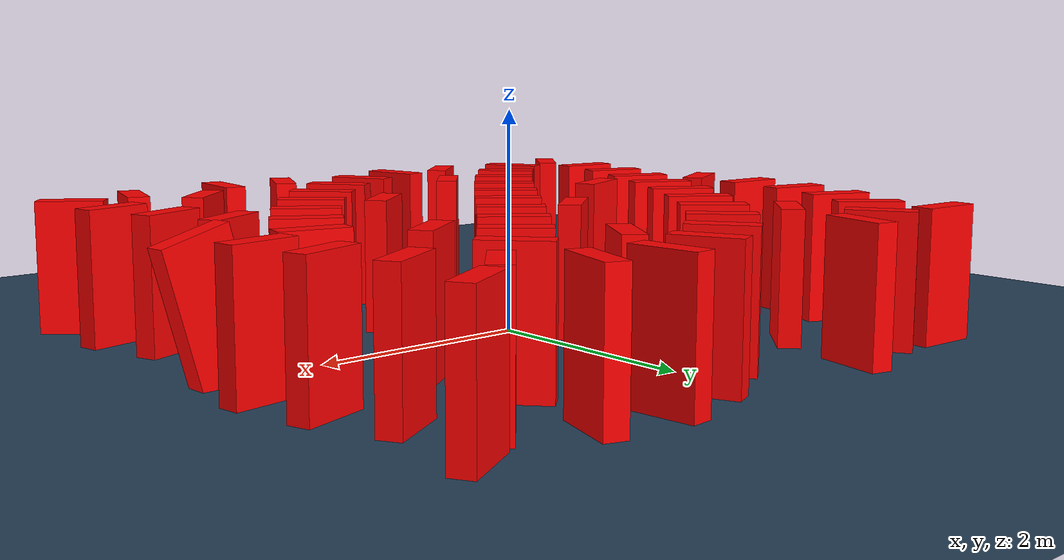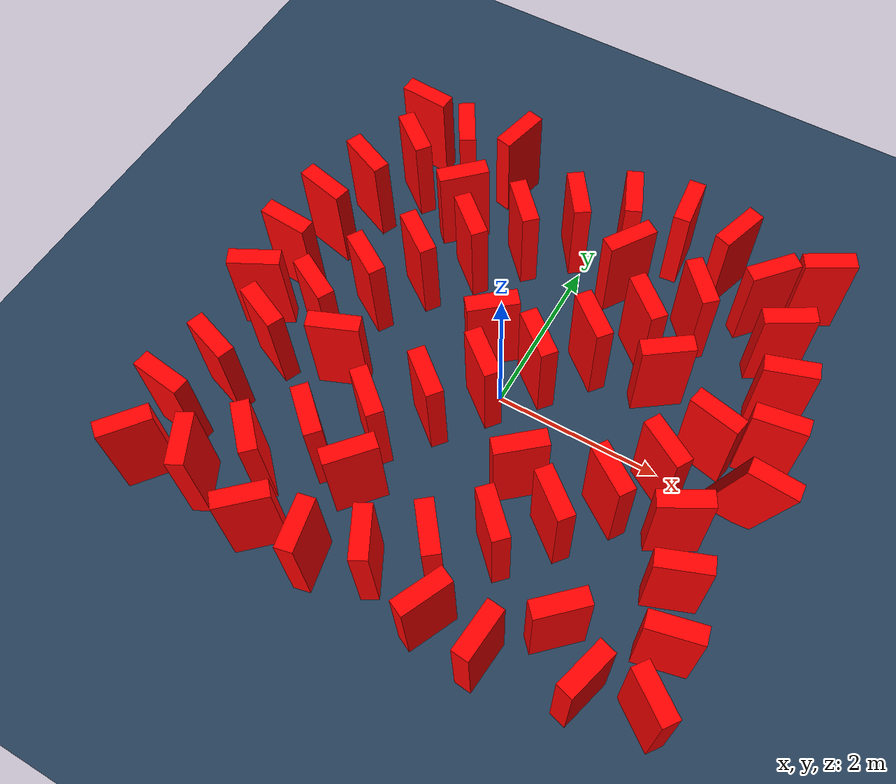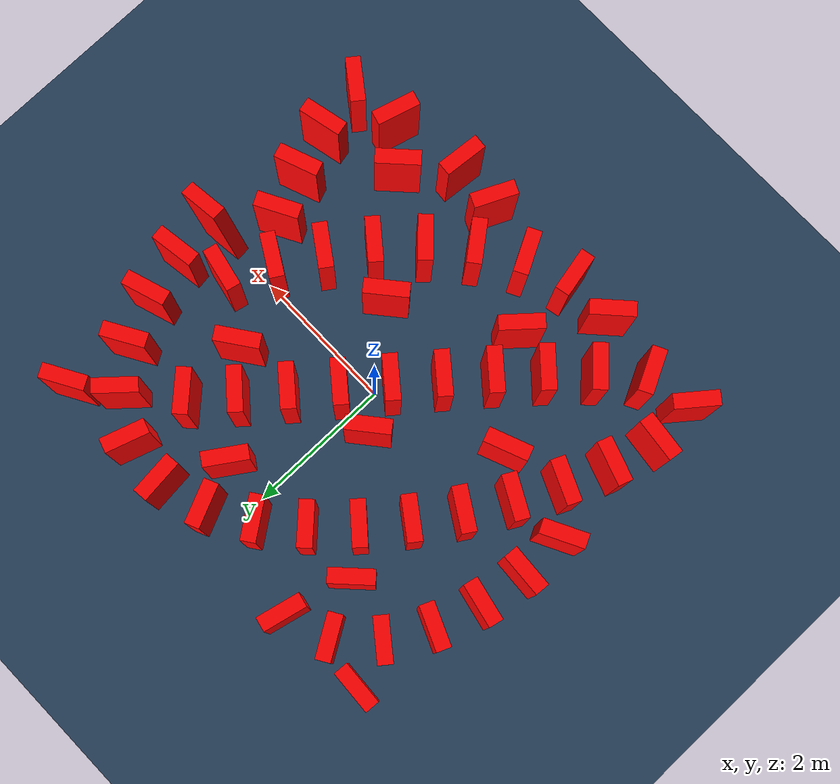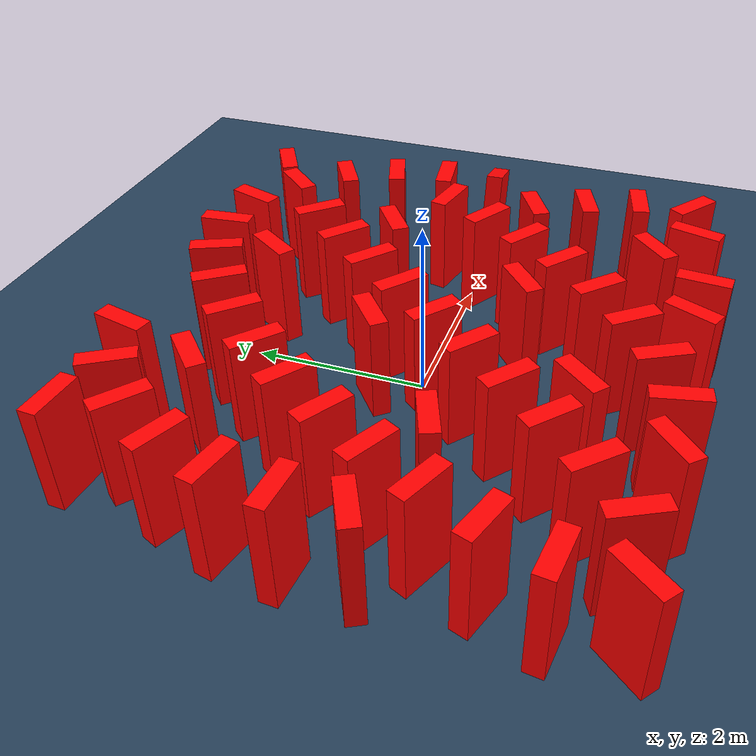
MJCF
<mujoco>
  <visual>
    <headlight diffuse="0.6 0.6 0.6" ambient="0.1 0.1 0.1" specular="0 0 0"/>
    <rgba haze="0.15 0.25 0.35 1"/>
    <global azimuth="120" elevation="-20"/>
  </visual>
  <asset>
    <texture type="skybox" builtin="gradient" rgb1="0.3 0.5 0.7" rgb2="0 0 0" width="512" height="3072"/>
    <texture type="2d" name="groundplane" builtin="checker" mark="edge" rgb1="0.2 0.3 0.4" rgb2="0.1 0.2 0.3" markrgb="0.8 0.8 0.8" width="300" height="300"/>
    <material name="groundplane" texture="groundplane" texuniform="true" texrepeat="5 5" reflectance="0.2"/>
  </asset>
  <worldbody>
    <light pos="0 0 1.5" dir="0 0 -1" directional="true"/>
    <geom name="floor" size="0 0 0.05" type="plane" material="groundplane"/>
    <body pos="3.0000 0.0000 0.6000" euler="0 15.0 94.1">
      <geom type="box" size="0.1000 0.3000 0.6000" rgba="1.000 0.000 0.000 1"/>
      <freejoint/>
    </body>
    <body pos="2.9540 0.6485 0.6000" euler="0 0.0 98.4">
      <geom type="box" size="0.1000 0.3000 0.6000" rgba="1.000 0.000 0.000 1"/>
      <freejoint/>
    </body>
    <body pos="2.8109 1.2828 0.6000" euler="0 0.0 108.0">
      <geom type="box" size="0.1000 0.3000 0.6000" rgba="1.000 0.000 0.000 1"/>
      <freejoint/>
    </body>
    <body pos="2.5543 1.8800 0.6000" euler="0 0.0 120.5">
      <geom type="box" size="0.1000 0.3000 0.6000" rgba="1.000 0.000 0.000 1"/>
      <freejoint/>
    </body>
    <body pos="2.1559 2.3936 0.6000" euler="0 0.0 138.4">
      <geom type="box" size="0.1000 0.3000 0.6000" rgba="1.000 0.000 0.000 1"/>
      <freejoint/>
    </body>
    <body pos="1.5988 2.7289 0.6000" euler="0 0.0 161.9">
      <geom type="box" size="0.1000 0.3000 0.6000" rgba="1.000 0.000 0.000 1"/>
      <freejoint/>
    </body>
    <body pos="0.9513 2.7878 0.6000" euler="0 0.0 -174.3">
      <geom type="box" size="0.1000 0.3000 0.6000" rgba="1.000 0.000 0.000 1"/>
      <freejoint/>
    </body>
    <body pos="0.3281 2.6028 0.6000" euler="0 0.0 -156.3">
      <geom type="box" size="0.1000 0.3000 0.6000" rgba="1.000 0.000 0.000 1"/>
      <freejoint/>
    </body>
    <body pos="-0.2300 2.2692 0.6000" euler="0 0.0 -144.4">
      <geom type="box" size="0.1000 0.3000 0.6000" rgba="1.000 0.000 0.000 1"/>
      <freejoint/>
    </body>
    <body pos="-0.7263 1.8487 0.6000" euler="0 0.0 -136.4">
      <geom type="box" size="0.1000 0.3000 0.6000" rgba="1.000 0.000 0.000 1"/>
      <freejoint/>
    </body>
    <body pos="-1.1704 1.3738 0.6000" euler="0 0.0 -130.5">
      <geom type="box" size="0.1000 0.3000 0.6000" rgba="1.000 0.000 0.000 1"/>
      <freejoint/>
    </body>
    <body pos="-1.5704 0.8612 0.6000" euler="0 0.0 -125.8">
      <geom type="box" size="0.1000 0.3000 0.6000" rgba="1.000 0.000 0.000 1"/>
      <freejoint/>
    </body>
    <body pos="-1.9312 0.3205 0.6000" euler="0 0.0 -121.8">
      <geom type="box" size="0.1000 0.3000 0.6000" rgba="1.000 0.000 0.000 1"/>
      <freejoint/>
    </body>
    <body pos="-2.2551 -0.2432 0.6000" euler="0 0.0 -118.0">
      <geom type="box" size="0.1000 0.3000 0.6000" rgba="1.000 0.000 0.000 1"/>
      <freejoint/>
    </body>
    <body pos="-2.5410 -0.8271 0.6000" euler="0 0.0 -113.9">
      <geom type="box" size="0.1000 0.3000 0.6000" rgba="1.000 0.000 0.000 1"/>
      <freejoint/>
    </body>
    <body pos="-2.7825 -1.4308 0.6000" euler="0 0.0 -108.8">
      <geom type="box" size="0.1000 0.3000 0.6000" rgba="1.000 0.000 0.000 1"/>
      <freejoint/>
    </body>
    <body pos="-2.9584 -2.0567 0.6000" euler="0 0.0 -97.1">
      <geom type="box" size="0.1000 0.3000 0.6000" rgba="1.000 0.000 0.000 1"/>
      <freejoint/>
    </body>
    <body pos="-2.9412 -2.7065 0.6000" euler="0 0.0 -38.4">
      <geom type="box" size="0.1000 0.3000 0.6000" rgba="1.000 0.001 0.000 1"/>
      <freejoint/>
    </body>
    <body pos="-2.3044 -2.5758 0.6000" euler="0 0.0 26.8">
      <geom type="box" size="0.1000 0.3000 0.6000" rgba="1.000 0.001 0.000 1"/>
      <freejoint/>
    </body>
    <body pos="-1.8216 -2.1402 0.6000" euler="0 0.0 44.5">
      <geom type="box" size="0.1000 0.3000 0.6000" rgba="1.000 0.001 0.000 1"/>
      <freejoint/>
    </body>
    <body pos="-1.3785 -1.6645 0.6000" euler="0 0.0 48.2">
      <geom type="box" size="0.1000 0.3000 0.6000" rgba="1.000 0.001 0.000 1"/>
      <freejoint/>
    </body>
    <body pos="-0.9546 -1.1717 0.6000" euler="0 0.0 49.9">
      <geom type="box" size="0.1000 0.3000 0.6000" rgba="1.000 0.001 0.000 1"/>
      <freejoint/>
    </body>
    <body pos="-0.5407 -0.6700 0.6000" euler="0 0.0 50.8">
      <geom type="box" size="0.1000 0.3000 0.6000" rgba="1.000 0.001 0.000 1"/>
      <freejoint/>
    </body>
    <body pos="-0.1319 -0.1641 0.6000" euler="0 0.0 51.1">
      <geom type="box" size="0.1000 0.3000 0.6000" rgba="1.000 0.001 0.000 1"/>
      <freejoint/>
    </body>
    <body pos="0.2756 0.3426 0.6000" euler="0 0.0 51.1">
      <geom type="box" size="0.1000 0.3000 0.6000" rgba="1.000 0.001 0.000 1"/>
      <freejoint/>
    </body>
    <body pos="0.6856 0.8472 0.6000" euler="0 0.0 50.5">
      <geom type="box" size="0.1000 0.3000 0.6000" rgba="1.000 0.001 0.000 1"/>
      <freejoint/>
    </body>
    <body pos="1.1023 1.3465 0.6000" euler="0 0.0 49.4">
      <geom type="box" size="0.1000 0.3000 0.6000" rgba="1.000 0.001 0.000 1"/>
      <freejoint/>
    </body>
    <body pos="1.5319 1.8348 0.6000" euler="0 0.0 42.5">
      <geom type="box" size="0.1000 0.3000 0.6000" rgba="1.000 0.001 0.000 1"/>
      <freejoint/>
    </body>
    <body pos="2.6748 2.7852 0.6000" euler="0 0.0 -60.1">
      <geom type="box" size="0.1000 0.3000 0.6000" rgba="1.000 0.001 0.000 1"/>
      <freejoint/>
    </body>
    <body pos="2.3461 0.4184 0.6000" euler="0 0.0 -102.3">
      <geom type="box" size="0.1000 0.3000 0.6000" rgba="1.000 0.001 0.000 1"/>
      <freejoint/>
    </body>
    <body pos="2.0333 -0.1517 0.6000" euler="0 0.0 -120.6">
      <geom type="box" size="0.1000 0.3000 0.6000" rgba="1.000 0.001 0.000 1"/>
      <freejoint/>
    </body>
    <body pos="1.6838 -0.6999 0.6000" euler="0 0.0 -124.6">
      <geom type="box" size="0.1000 0.3000 0.6000" rgba="1.000 0.001 0.000 1"/>
      <freejoint/>
    </body>
    <body pos="1.2961 -1.2218 0.6000" euler="0 0.0 -129.0">
      <geom type="box" size="0.1000 0.3000 0.6000" rgba="1.000 0.001 0.000 1"/>
      <freejoint/>
    </body>
    <body pos="0.8660 -1.7096 0.6000" euler="0 0.0 -134.4">
      <geom type="box" size="0.1000 0.3000 0.6000" rgba="1.000 0.001 0.000 1"/>
      <freejoint/>
    </body>
    <body pos="0.3865 -2.1490 0.6000" euler="0 0.0 -141.7">
      <geom type="box" size="0.1000 0.3000 0.6000" rgba="1.000 0.001 0.000 1"/>
      <freejoint/>
    </body>
    <body pos="-0.1518 -2.5138 0.6000" euler="0 0.0 -152.1">
      <geom type="box" size="0.1000 0.3000 0.6000" rgba="1.000 0.001 0.000 1"/>
      <freejoint/>
    </body>
    <body pos="-0.7563 -2.7528 0.6000" euler="0 0.0 -168.1">
      <geom type="box" size="0.1000 0.3000 0.6000" rgba="1.000 0.001 0.000 1"/>
      <freejoint/>
    </body>
    <body pos="-1.4059 -2.7775 0.6000" euler="0 0.0 132.9">
      <geom type="box" size="0.1000 0.3000 0.6000" rgba="1.000 0.001 0.000 1"/>
      <freejoint/>
    </body>
    <body pos="-2.9865 -0.3536 0.6000" euler="0 0.0 117.3">
      <geom type="box" size="0.1000 0.3000 0.6000" rgba="1.000 0.001 0.000 1"/>
      <freejoint/>
    </body>
    <body pos="-2.9905 0.2966 0.6000" euler="0 0.0 86.2">
      <geom type="box" size="0.1000 0.3000 0.6000" rgba="1.000 0.001 0.000 1"/>
      <freejoint/>
    </body>
    <body pos="-2.9015 0.9407 0.6000" euler="0 0.0 77.5">
      <geom type="box" size="0.1000 0.3000 0.6000" rgba="1.000 0.001 0.000 1"/>
      <freejoint/>
    </body>
    <body pos="-2.7094 1.5617 0.6000" euler="0 0.0 66.8">
      <geom type="box" size="0.1000 0.3000 0.6000" rgba="1.000 0.001 0.000 1"/>
      <freejoint/>
    </body>
    <body pos="-2.3920 2.1290 0.6000" euler="0 0.0 52.1">
      <geom type="box" size="0.1000 0.3000 0.6000" rgba="1.000 0.001 0.000 1"/>
      <freejoint/>
    </body>
    <body pos="-1.9203 2.5762 0.6000" euler="0 0.0 31.4">
      <geom type="box" size="0.1000 0.3000 0.6000" rgba="1.000 0.001 0.000 1"/>
      <freejoint/>
    </body>
    <body pos="-1.3068 2.7916 0.6000" euler="0 0.0 -13.1">
      <geom type="box" size="0.1000 0.3000 0.6000" rgba="1.000 0.001 0.000 1"/>
      <freejoint/>
    </body>
    <body pos="0.5655 1.9976 0.6000" euler="0 0.0 -33.7">
      <geom type="box" size="0.1000 0.3000 0.6000" rgba="1.000 0.001 0.000 1"/>
      <freejoint/>
    </body>
    <body pos="1.5563 0.8808 0.6000" euler="0 0.0 -54.4">
      <geom type="box" size="0.1000 0.3000 0.6000" rgba="1.000 0.001 0.000 1"/>
      <freejoint/>
    </body>
    <body pos="2.4571 -0.6450 0.6000" euler="0 0.0 -61.4">
      <geom type="box" size="0.1000 0.3000 0.6000" rgba="1.000 0.001 0.000 1"/>
      <freejoint/>
    </body>
    <body pos="2.7135 -1.2424 0.6000" euler="0 0.0 -69.4">
      <geom type="box" size="0.1000 0.3000 0.6000" rgba="1.000 0.001 0.000 1"/>
      <freejoint/>
    </body>
    <body pos="2.9139 -1.8608 0.6000" euler="0 0.0 -77.4">
      <geom type="box" size="0.1000 0.3000 0.6000" rgba="1.000 0.001 0.000 1"/>
      <freejoint/>
    </body>
    <body pos="2.9969 -2.5055 0.6000" euler="0 0.0 -126.5">
      <geom type="box" size="0.1000 0.3000 0.6000" rgba="1.000 0.001 0.000 1"/>
      <freejoint/>
    </body>
    <body pos="2.3559 -2.6140 0.6000" euler="0 0.0 164.2">
      <geom type="box" size="0.1000 0.3000 0.6000" rgba="1.000 0.002 0.000 1"/>
      <freejoint/>
    </body>
    <body pos="1.8668 -2.1855 0.6000" euler="0 0.0 133.5">
      <geom type="box" size="0.1000 0.3000 0.6000" rgba="1.000 0.002 0.000 1"/>
      <freejoint/>
    </body>
    <body pos="0.7303 -0.9017 0.6000" euler="0 0.0 130.2">
      <geom type="box" size="0.1000 0.3000 0.6000" rgba="1.000 0.002 0.000 1"/>
      <freejoint/>
    </body>
    <body pos="-0.3649 0.4532 0.6000" euler="0 0.0 129.6">
      <geom type="box" size="0.1000 0.3000 0.6000" rgba="1.000 0.002 0.000 1"/>
      <freejoint/>
    </body>
    <body pos="-1.5756 1.8823 0.6000" euler="0 0.0 134.0">
      <geom type="box" size="0.1000 0.3000 0.6000" rgba="1.000 0.002 0.000 1"/>
      <freejoint/>
    </body>
    <body pos="-2.5825 2.7505 0.6000" euler="0 0.0 -93.6">
      <geom type="box" size="0.1000 0.3000 0.6000" rgba="1.000 0.002 0.000 1"/>
      <freejoint/>
    </body>
    <body pos="-1.7318 -0.6293 0.6000" euler="0 0.0 -68.2">
      <geom type="box" size="0.1000 0.3000 0.6000" rgba="1.000 0.002 0.000 1"/>
      <freejoint/>
    </body>
    <body pos="-0.7490 -1.8267 0.6000" euler="0 0.0 -41.1">
      <geom type="box" size="0.1000 0.3000 0.6000" rgba="1.000 0.002 0.000 1"/>
      <freejoint/>
    </body>
    <body pos="0.6746 -2.7318 0.6000" euler="0 0.0 -24.9">
      <geom type="box" size="0.1000 0.3000 0.6000" rgba="1.000 0.002 0.000 1"/>
      <freejoint/>
    </body>
    <body pos="1.3222 -2.7899 0.6000" euler="0 0.0 -5.1">
      <geom type="box" size="0.1000 0.3000 0.6000" rgba="1.000 0.002 0.000 1"/>
      <freejoint/>
    </body>
  </worldbody>
</mujoco>
